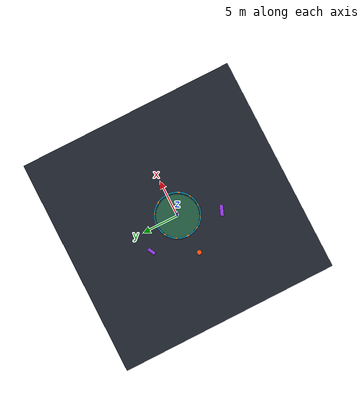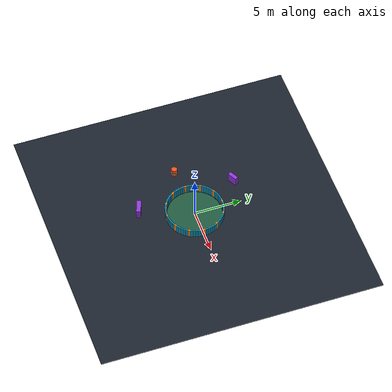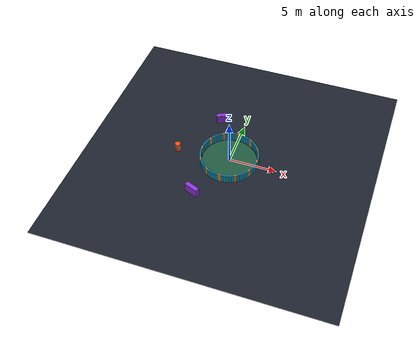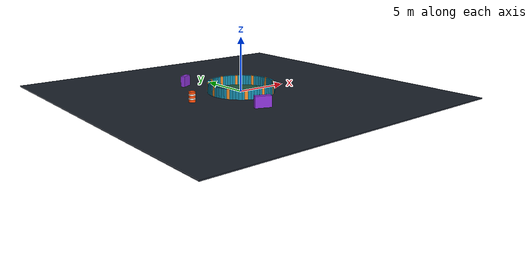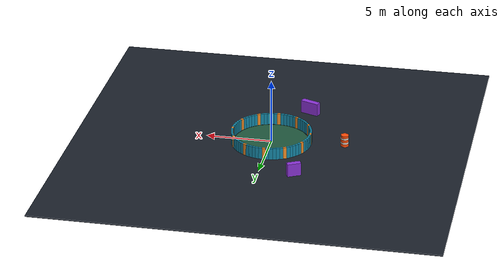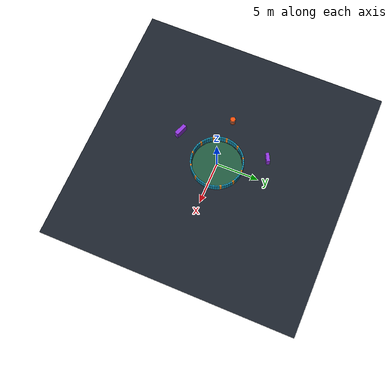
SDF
<sdf version="1.9">
 <world name="loop_course">
  <model name="ground">
   <static>true</static>
   <link name="ground">
    <collision name="ground_collision">
     <pose>0 0 -0.05 0 0 0</pose>
     <geometry><box><size>30 30 0.1</size></box></geometry>
    </collision>
    <visual name="ground_visual">
     <pose>0 0 -0.05 0 0 0</pose>
     <geometry><box><size>30 30 0.1</size></box></geometry>
     <material><ambient>0.105 0.13 0.17 1</ambient><diffuse>0.105 0.13 0.17 1</diffuse></material>
    </visual>
   </link>
  </model>
  <model name="island">
   <static>true</static>
   <link name="island">
    <visual name="grass">
     <pose>0 0 0.005 0 0 0</pose>
     <geometry><cylinder><radius>2.88</radius><length>0.02</length></cylinder></geometry>
     <material><ambient>0.12 0.34 0.24 1</ambient><diffuse>0.12 0.34 0.24 1</diffuse></material>
    </visual>
   </link>
  </model>
  <model name="inner_wall">
   <static>true</static>
   <link name="wall">
    <collision name="wall_0">
     <pose>3.0 0.0 0.45 0 0 1.5707963267948966</pose>
     <geometry><box><size>0.2869656574510724 0.16 0.9</size></box></geometry>
    </collision>
    <visual name="wall_visual_0">
     <pose>3.0 0.0 0.45 0 0 1.5707963267948966</pose>
     <geometry><box><size>0.2869656574510724 0.16 0.9</size></box></geometry>
     <material><ambient>0.98 0.57 0.16 1</ambient><diffuse>0.98 0.57 0.16 1</diffuse></material>
    </visual>
    <collision name="wall_1">
     <pose>2.988584094275237 0.2614672282429745 0.45 0 0 1.658062789394613</pose>
     <geometry><box><size>0.2869656574510724 0.16 0.9</size></box></geometry>
    </collision>
    <visual name="wall_visual_1">
     <pose>2.988584094275237 0.2614672282429745 0.45 0 0 1.658062789394613</pose>
     <geometry><box><size>0.2869656574510724 0.16 0.9</size></box></geometry>
     <material><ambient>0.08 0.55 0.68 1</ambient><diffuse>0.08 0.55 0.68 1</diffuse></material>
    </visual>
    <collision name="wall_2">
     <pose>2.954423259036624 0.520944533000791 0.45 0 0 1.7453292519943295</pose>
     <geometry><box><size>0.2869656574510724 0.16 0.9</size></box></geometry>
    </collision>
    <visual name="wall_visual_2">
     <pose>2.954423259036624 0.520944533000791 0.45 0 0 1.7453292519943295</pose>
     <geometry><box><size>0.2869656574510724 0.16 0.9</size></box></geometry>
     <material><ambient>0.08 0.55 0.68 1</ambient><diffuse>0.08 0.55 0.68 1</diffuse></material>
    </visual>
    <collision name="wall_3">
     <pose>2.897777478867205 0.7764571353075622 0.45 0 0 1.832595714594046</pose>
     <geometry><box><size>0.2869656574510724 0.16 0.9</size></box></geometry>
    </collision>
    <visual name="wall_visual_3">
     <pose>2.897777478867205 0.7764571353075622 0.45 0 0 1.832595714594046</pose>
     <geometry><box><size>0.2869656574510724 0.16 0.9</size></box></geometry>
     <material><ambient>0.08 0.55 0.68 1</ambient><diffuse>0.08 0.55 0.68 1</diffuse></material>
    </visual>
    <collision name="wall_4">
     <pose>2.8190778623577253 1.0260604299770062 0.45 0 0 1.9198621771937625</pose>
     <geometry><box><size>0.2869656574510724 0.16 0.9</size></box></geometry>
    </collision>
    <visual name="wall_visual_4">
     <pose>2.8190778623577253 1.0260604299770062 0.45 0 0 1.9198621771937625</pose>
     <geometry><box><size>0.2869656574510724 0.16 0.9</size></box></geometry>
     <material><ambient>0.08 0.55 0.68 1</ambient><diffuse>0.08 0.55 0.68 1</diffuse></material>
    </visual>
    <collision name="wall_5">
     <pose>2.7189233611099497 1.2678547852220983 0.45 0 0 2.007128639793479</pose>
     <geometry><box><size>0.2869656574510724 0.16 0.9</size></box></geometry>
    </collision>
    <visual name="wall_visual_5">
     <pose>2.7189233611099497 1.2678547852220983 0.45 0 0 2.007128639793479</pose>
     <geometry><box><size>0.2869656574510724 0.16 0.9</size></box></geometry>
     <material><ambient>0.08 0.55 0.68 1</ambient><diffuse>0.08 0.55 0.68 1</diffuse></material>
    </visual>
    <collision name="wall_6">
     <pose>2.598076211353316 1.4999999999999998 0.45 0 0 2.0943951023931953</pose>
     <geometry><box><size>0.2869656574510724 0.16 0.9</size></box></geometry>
    </collision>
    <visual name="wall_visual_6">
     <pose>2.598076211353316 1.4999999999999998 0.45 0 0 2.0943951023931953</pose>
     <geometry><box><size>0.2869656574510724 0.16 0.9</size></box></geometry>
     <material><ambient>0.98 0.57 0.16 1</ambient><diffuse>0.98 0.57 0.16 1</diffuse></material>
    </visual>
    <collision name="wall_7">
     <pose>2.4574561328669753 1.7207293090531381 0.45 0 0 2.181661564992912</pose>
     <geometry><box><size>0.2869656574510724 0.16 0.9</size></box></geometry>
    </collision>
    <visual name="wall_visual_7">
     <pose>2.4574561328669753 1.7207293090531381 0.45 0 0 2.181661564992912</pose>
     <geometry><box><size>0.2869656574510724 0.16 0.9</size></box></geometry>
     <material><ambient>0.08 0.55 0.68 1</ambient><diffuse>0.08 0.55 0.68 1</diffuse></material>
    </visual>
    <collision name="wall_8">
     <pose>2.298133329356934 1.9283628290596178 0.45 0 0 2.2689280275926285</pose>
     <geometry><box><size>0.2869656574510724 0.16 0.9</size></box></geometry>
    </collision>
    <visual name="wall_visual_8">
     <pose>2.298133329356934 1.9283628290596178 0.45 0 0 2.2689280275926285</pose>
     <geometry><box><size>0.2869656574510724 0.16 0.9</size></box></geometry>
     <material><ambient>0.08 0.55 0.68 1</ambient><diffuse>0.08 0.55 0.68 1</diffuse></material>
    </visual>
    <collision name="wall_9">
     <pose>2.121320343559643 2.1213203435596424 0.45 0 0 2.356194490192345</pose>
     <geometry><box><size>0.2869656574510724 0.16 0.9</size></box></geometry>
    </collision>
    <visual name="wall_visual_9">
     <pose>2.121320343559643 2.1213203435596424 0.45 0 0 2.356194490192345</pose>
     <geometry><box><size>0.2869656574510724 0.16 0.9</size></box></geometry>
     <material><ambient>0.08 0.55 0.68 1</ambient><diffuse>0.08 0.55 0.68 1</diffuse></material>
    </visual>
    <collision name="wall_10">
     <pose>1.9283628290596182 2.298133329356934 0.45 0 0 2.443460952792061</pose>
     <geometry><box><size>0.2869656574510724 0.16 0.9</size></box></geometry>
    </collision>
    <visual name="wall_visual_10">
     <pose>1.9283628290596182 2.298133329356934 0.45 0 0 2.443460952792061</pose>
     <geometry><box><size>0.2869656574510724 0.16 0.9</size></box></geometry>
     <material><ambient>0.08 0.55 0.68 1</ambient><diffuse>0.08 0.55 0.68 1</diffuse></material>
    </visual>
    <collision name="wall_11">
     <pose>1.7207293090531386 2.457456132866975 0.45 0 0 2.5307274153917776</pose>
     <geometry><box><size>0.2869656574510724 0.16 0.9</size></box></geometry>
    </collision>
    <visual name="wall_visual_11">
     <pose>1.7207293090531386 2.457456132866975 0.45 0 0 2.5307274153917776</pose>
     <geometry><box><size>0.2869656574510724 0.16 0.9</size></box></geometry>
     <material><ambient>0.08 0.55 0.68 1</ambient><diffuse>0.08 0.55 0.68 1</diffuse></material>
    </visual>
    <collision name="wall_12">
     <pose>1.5000000000000004 2.598076211353316 0.45 0 0 2.617993877991494</pose>
     <geometry><box><size>0.2869656574510724 0.16 0.9</size></box></geometry>
    </collision>
    <visual name="wall_visual_12">
     <pose>1.5000000000000004 2.598076211353316 0.45 0 0 2.617993877991494</pose>
     <geometry><box><size>0.2869656574510724 0.16 0.9</size></box></geometry>
     <material><ambient>0.98 0.57 0.16 1</ambient><diffuse>0.98 0.57 0.16 1</diffuse></material>
    </visual>
    <collision name="wall_13">
     <pose>1.2678547852220983 2.7189233611099497 0.45 0 0 2.705260340591211</pose>
     <geometry><box><size>0.2869656574510724 0.16 0.9</size></box></geometry>
    </collision>
    <visual name="wall_visual_13">
     <pose>1.2678547852220983 2.7189233611099497 0.45 0 0 2.705260340591211</pose>
     <geometry><box><size>0.2869656574510724 0.16 0.9</size></box></geometry>
     <material><ambient>0.08 0.55 0.68 1</ambient><diffuse>0.08 0.55 0.68 1</diffuse></material>
    </visual>
    <collision name="wall_14">
     <pose>1.0260604299770064 2.819077862357725 0.45 0 0 2.792526803190927</pose>
     <geometry><box><size>0.2869656574510724 0.16 0.9</size></box></geometry>
    </collision>
    <visual name="wall_visual_14">
     <pose>1.0260604299770064 2.819077862357725 0.45 0 0 2.792526803190927</pose>
     <geometry><box><size>0.2869656574510724 0.16 0.9</size></box></geometry>
     <material><ambient>0.08 0.55 0.68 1</ambient><diffuse>0.08 0.55 0.68 1</diffuse></material>
    </visual>
    <collision name="wall_15">
     <pose>0.7764571353075629 2.8977774788672046 0.45 0 0 2.8797932657906435</pose>
     <geometry><box><size>0.2869656574510724 0.16 0.9</size></box></geometry>
    </collision>
    <visual name="wall_visual_15">
     <pose>0.7764571353075629 2.8977774788672046 0.45 0 0 2.8797932657906435</pose>
     <geometry><box><size>0.2869656574510724 0.16 0.9</size></box></geometry>
     <material><ambient>0.08 0.55 0.68 1</ambient><diffuse>0.08 0.55 0.68 1</diffuse></material>
    </visual>
    <collision name="wall_16">
     <pose>0.5209445330007912 2.954423259036624 0.45 0 0 2.9670597283903604</pose>
     <geometry><box><size>0.2869656574510724 0.16 0.9</size></box></geometry>
    </collision>
    <visual name="wall_visual_16">
     <pose>0.5209445330007912 2.954423259036624 0.45 0 0 2.9670597283903604</pose>
     <geometry><box><size>0.2869656574510724 0.16 0.9</size></box></geometry>
     <material><ambient>0.08 0.55 0.68 1</ambient><diffuse>0.08 0.55 0.68 1</diffuse></material>
    </visual>
    <collision name="wall_17">
     <pose>0.2614672282429744 2.988584094275237 0.45 0 0 3.0543261909900767</pose>
     <geometry><box><size>0.2869656574510724 0.16 0.9</size></box></geometry>
    </collision>
    <visual name="wall_visual_17">
     <pose>0.2614672282429744 2.988584094275237 0.45 0 0 3.0543261909900767</pose>
     <geometry><box><size>0.2869656574510724 0.16 0.9</size></box></geometry>
     <material><ambient>0.08 0.55 0.68 1</ambient><diffuse>0.08 0.55 0.68 1</diffuse></material>
    </visual>
    <collision name="wall_18">
     <pose>1.8369701987210297e-16 3.0 0.45 0 0 3.141592653589793</pose>
     <geometry><box><size>0.2869656574510724 0.16 0.9</size></box></geometry>
    </collision>
    <visual name="wall_visual_18">
     <pose>1.8369701987210297e-16 3.0 0.45 0 0 3.141592653589793</pose>
     <geometry><box><size>0.2869656574510724 0.16 0.9</size></box></geometry>
     <material><ambient>0.98 0.57 0.16 1</ambient><diffuse>0.98 0.57 0.16 1</diffuse></material>
    </visual>
    <collision name="wall_19">
     <pose>-0.261467228242974 2.988584094275237 0.45 0 0 3.2288591161895095</pose>
     <geometry><box><size>0.2869656574510724 0.16 0.9</size></box></geometry>
    </collision>
    <visual name="wall_visual_19">
     <pose>-0.261467228242974 2.988584094275237 0.45 0 0 3.2288591161895095</pose>
     <geometry><box><size>0.2869656574510724 0.16 0.9</size></box></geometry>
     <material><ambient>0.08 0.55 0.68 1</ambient><diffuse>0.08 0.55 0.68 1</diffuse></material>
    </visual>
    <collision name="wall_20">
     <pose>-0.5209445330007909 2.954423259036624 0.45 0 0 3.316125578789226</pose>
     <geometry><box><size>0.2869656574510724 0.16 0.9</size></box></geometry>
    </collision>
    <visual name="wall_visual_20">
     <pose>-0.5209445330007909 2.954423259036624 0.45 0 0 3.316125578789226</pose>
     <geometry><box><size>0.2869656574510724 0.16 0.9</size></box></geometry>
     <material><ambient>0.08 0.55 0.68 1</ambient><diffuse>0.08 0.55 0.68 1</diffuse></material>
    </visual>
    <collision name="wall_21">
     <pose>-0.7764571353075626 2.897777478867205 0.45 0 0 3.4033920413889427</pose>
     <geometry><box><size>0.2869656574510724 0.16 0.9</size></box></geometry>
    </collision>
    <visual name="wall_visual_21">
     <pose>-0.7764571353075626 2.897777478867205 0.45 0 0 3.4033920413889427</pose>
     <geometry><box><size>0.2869656574510724 0.16 0.9</size></box></geometry>
     <material><ambient>0.08 0.55 0.68 1</ambient><diffuse>0.08 0.55 0.68 1</diffuse></material>
    </visual>
    <collision name="wall_22">
     <pose>-1.0260604299770055 2.8190778623577253 0.45 0 0 3.4906585039886586</pose>
     <geometry><box><size>0.2869656574510724 0.16 0.9</size></box></geometry>
    </collision>
    <visual name="wall_visual_22">
     <pose>-1.0260604299770055 2.8190778623577253 0.45 0 0 3.4906585039886586</pose>
     <geometry><box><size>0.2869656574510724 0.16 0.9</size></box></geometry>
     <material><ambient>0.08 0.55 0.68 1</ambient><diffuse>0.08 0.55 0.68 1</diffuse></material>
    </visual>
    <collision name="wall_23">
     <pose>-1.267854785222098 2.71892336110995 0.45 0 0 3.5779249665883754</pose>
     <geometry><box><size>0.2869656574510724 0.16 0.9</size></box></geometry>
    </collision>
    <visual name="wall_visual_23">
     <pose>-1.267854785222098 2.71892336110995 0.45 0 0 3.5779249665883754</pose>
     <geometry><box><size>0.2869656574510724 0.16 0.9</size></box></geometry>
     <material><ambient>0.08 0.55 0.68 1</ambient><diffuse>0.08 0.55 0.68 1</diffuse></material>
    </visual>
    <collision name="wall_24">
     <pose>-1.4999999999999993 2.598076211353316 0.45 0 0 3.665191429188092</pose>
     <geometry><box><size>0.2869656574510724 0.16 0.9</size></box></geometry>
    </collision>
    <visual name="wall_visual_24">
     <pose>-1.4999999999999993 2.598076211353316 0.45 0 0 3.665191429188092</pose>
     <geometry><box><size>0.2869656574510724 0.16 0.9</size></box></geometry>
     <material><ambient>0.98 0.57 0.16 1</ambient><diffuse>0.98 0.57 0.16 1</diffuse></material>
    </visual>
    <collision name="wall_25">
     <pose>-1.7207293090531386 2.457456132866975 0.45 0 0 3.7524578917878086</pose>
     <geometry><box><size>0.2869656574510724 0.16 0.9</size></box></geometry>
    </collision>
    <visual name="wall_visual_25">
     <pose>-1.7207293090531386 2.457456132866975 0.45 0 0 3.7524578917878086</pose>
     <geometry><box><size>0.2869656574510724 0.16 0.9</size></box></geometry>
     <material><ambient>0.08 0.55 0.68 1</ambient><diffuse>0.08 0.55 0.68 1</diffuse></material>
    </visual>
    <collision name="wall_26">
     <pose>-1.9283628290596182 2.298133329356934 0.45 0 0 3.839724354387525</pose>
     <geometry><box><size>0.2869656574510724 0.16 0.9</size></box></geometry>
    </collision>
    <visual name="wall_visual_26">
     <pose>-1.9283628290596182 2.298133329356934 0.45 0 0 3.839724354387525</pose>
     <geometry><box><size>0.2869656574510724 0.16 0.9</size></box></geometry>
     <material><ambient>0.08 0.55 0.68 1</ambient><diffuse>0.08 0.55 0.68 1</diffuse></material>
    </visual>
    <collision name="wall_27">
     <pose>-2.1213203435596424 2.121320343559643 0.45 0 0 3.9269908169872414</pose>
     <geometry><box><size>0.2869656574510724 0.16 0.9</size></box></geometry>
    </collision>
    <visual name="wall_visual_27">
     <pose>-2.1213203435596424 2.121320343559643 0.45 0 0 3.9269908169872414</pose>
     <geometry><box><size>0.2869656574510724 0.16 0.9</size></box></geometry>
     <material><ambient>0.08 0.55 0.68 1</ambient><diffuse>0.08 0.55 0.68 1</diffuse></material>
    </visual>
    <collision name="wall_28">
     <pose>-2.2981333293569337 1.9283628290596184 0.45 0 0 4.014257279586958</pose>
     <geometry><box><size>0.2869656574510724 0.16 0.9</size></box></geometry>
    </collision>
    <visual name="wall_visual_28">
     <pose>-2.2981333293569337 1.9283628290596184 0.45 0 0 4.014257279586958</pose>
     <geometry><box><size>0.2869656574510724 0.16 0.9</size></box></geometry>
     <material><ambient>0.08 0.55 0.68 1</ambient><diffuse>0.08 0.55 0.68 1</diffuse></material>
    </visual>
    <collision name="wall_29">
     <pose>-2.4574561328669757 1.7207293090531377 0.45 0 0 4.101523742186675</pose>
     <geometry><box><size>0.2869656574510724 0.16 0.9</size></box></geometry>
    </collision>
    <visual name="wall_visual_29">
     <pose>-2.4574561328669757 1.7207293090531377 0.45 0 0 4.101523742186675</pose>
     <geometry><box><size>0.2869656574510724 0.16 0.9</size></box></geometry>
     <material><ambient>0.08 0.55 0.68 1</ambient><diffuse>0.08 0.55 0.68 1</diffuse></material>
    </visual>
    <collision name="wall_30">
     <pose>-2.5980762113533156 1.5000000000000009 0.45 0 0 4.1887902047863905</pose>
     <geometry><box><size>0.2869656574510724 0.16 0.9</size></box></geometry>
    </collision>
    <visual name="wall_visual_30">
     <pose>-2.5980762113533156 1.5000000000000009 0.45 0 0 4.1887902047863905</pose>
     <geometry><box><size>0.2869656574510724 0.16 0.9</size></box></geometry>
     <material><ambient>0.98 0.57 0.16 1</ambient><diffuse>0.98 0.57 0.16 1</diffuse></material>
    </visual>
    <collision name="wall_31">
     <pose>-2.7189233611099497 1.2678547852220985 0.45 0 0 4.276056667386108</pose>
     <geometry><box><size>0.2869656574510724 0.16 0.9</size></box></geometry>
    </collision>
    <visual name="wall_visual_31">
     <pose>-2.7189233611099497 1.2678547852220985 0.45 0 0 4.276056667386108</pose>
     <geometry><box><size>0.2869656574510724 0.16 0.9</size></box></geometry>
     <material><ambient>0.08 0.55 0.68 1</ambient><diffuse>0.08 0.55 0.68 1</diffuse></material>
    </visual>
    <collision name="wall_32">
     <pose>-2.819077862357725 1.0260604299770066 0.45 0 0 4.363323129985824</pose>
     <geometry><box><size>0.2869656574510724 0.16 0.9</size></box></geometry>
    </collision>
    <visual name="wall_visual_32">
     <pose>-2.819077862357725 1.0260604299770066 0.45 0 0 4.363323129985824</pose>
     <geometry><box><size>0.2869656574510724 0.16 0.9</size></box></geometry>
     <material><ambient>0.08 0.55 0.68 1</ambient><diffuse>0.08 0.55 0.68 1</diffuse></material>
    </visual>
    <collision name="wall_33">
     <pose>-2.897777478867205 0.7764571353075618 0.45 0 0 4.4505895925855405</pose>
     <geometry><box><size>0.2869656574510724 0.16 0.9</size></box></geometry>
    </collision>
    <visual name="wall_visual_33">
     <pose>-2.897777478867205 0.7764571353075618 0.45 0 0 4.4505895925855405</pose>
     <geometry><box><size>0.2869656574510724 0.16 0.9</size></box></geometry>
     <material><ambient>0.08 0.55 0.68 1</ambient><diffuse>0.08 0.55 0.68 1</diffuse></material>
    </visual>
    <collision name="wall_34">
     <pose>-2.954423259036624 0.5209445330007908 0.45 0 0 4.537856055185257</pose>
     <geometry><box><size>0.2869656574510724 0.16 0.9</size></box></geometry>
    </collision>
    <visual name="wall_visual_34">
     <pose>-2.954423259036624 0.5209445330007908 0.45 0 0 4.537856055185257</pose>
     <geometry><box><size>0.2869656574510724 0.16 0.9</size></box></geometry>
     <material><ambient>0.08 0.55 0.68 1</ambient><diffuse>0.08 0.55 0.68 1</diffuse></material>
    </visual>
    <collision name="wall_35">
     <pose>-2.988584094275237 0.2614672282429746 0.45 0 0 4.625122517784973</pose>
     <geometry><box><size>0.2869656574510724 0.16 0.9</size></box></geometry>
    </collision>
    <visual name="wall_visual_35">
     <pose>-2.988584094275237 0.2614672282429746 0.45 0 0 4.625122517784973</pose>
     <geometry><box><size>0.2869656574510724 0.16 0.9</size></box></geometry>
     <material><ambient>0.08 0.55 0.68 1</ambient><diffuse>0.08 0.55 0.68 1</diffuse></material>
    </visual>
    <collision name="wall_36">
     <pose>-3.0 3.6739403974420594e-16 0.45 0 0 4.71238898038469</pose>
     <geometry><box><size>0.2869656574510724 0.16 0.9</size></box></geometry>
    </collision>
    <visual name="wall_visual_36">
     <pose>-3.0 3.6739403974420594e-16 0.45 0 0 4.71238898038469</pose>
     <geometry><box><size>0.2869656574510724 0.16 0.9</size></box></geometry>
     <material><ambient>0.98 0.57 0.16 1</ambient><diffuse>0.98 0.57 0.16 1</diffuse></material>
    </visual>
    <collision name="wall_37">
     <pose>-2.988584094275237 -0.26146722824297386 0.45 0 0 4.799655442984406</pose>
     <geometry><box><size>0.2869656574510724 0.16 0.9</size></box></geometry>
    </collision>
    <visual name="wall_visual_37">
     <pose>-2.988584094275237 -0.26146722824297386 0.45 0 0 4.799655442984406</pose>
     <geometry><box><size>0.2869656574510724 0.16 0.9</size></box></geometry>
     <material><ambient>0.08 0.55 0.68 1</ambient><diffuse>0.08 0.55 0.68 1</diffuse></material>
    </visual>
    <collision name="wall_38">
     <pose>-2.9544232590366244 -0.52094453300079 0.45 0 0 4.886921905584122</pose>
     <geometry><box><size>0.2869656574510724 0.16 0.9</size></box></geometry>
    </collision>
    <visual name="wall_visual_38">
     <pose>-2.9544232590366244 -0.52094453300079 0.45 0 0 4.886921905584122</pose>
     <geometry><box><size>0.2869656574510724 0.16 0.9</size></box></geometry>
     <material><ambient>0.08 0.55 0.68 1</ambient><diffuse>0.08 0.55 0.68 1</diffuse></material>
    </visual>
    <collision name="wall_39">
     <pose>-2.897777478867205 -0.7764571353075611 0.45 0 0 4.974188368183839</pose>
     <geometry><box><size>0.2869656574510724 0.16 0.9</size></box></geometry>
    </collision>
    <visual name="wall_visual_39">
     <pose>-2.897777478867205 -0.7764571353075611 0.45 0 0 4.974188368183839</pose>
     <geometry><box><size>0.2869656574510724 0.16 0.9</size></box></geometry>
     <material><ambient>0.08 0.55 0.68 1</ambient><diffuse>0.08 0.55 0.68 1</diffuse></material>
    </visual>
    <collision name="wall_40">
     <pose>-2.8190778623577253 -1.026060429977006 0.45 0 0 5.061454830783555</pose>
     <geometry><box><size>0.2869656574510724 0.16 0.9</size></box></geometry>
    </collision>
    <visual name="wall_visual_40">
     <pose>-2.8190778623577253 -1.026060429977006 0.45 0 0 5.061454830783555</pose>
     <geometry><box><size>0.2869656574510724 0.16 0.9</size></box></geometry>
     <material><ambient>0.08 0.55 0.68 1</ambient><diffuse>0.08 0.55 0.68 1</diffuse></material>
    </visual>
    <collision name="wall_41">
     <pose>-2.718923361109951 -1.2678547852220967 0.45 0 0 5.148721293383272</pose>
     <geometry><box><size>0.2869656574510724 0.16 0.9</size></box></geometry>
    </collision>
    <visual name="wall_visual_41">
     <pose>-2.718923361109951 -1.2678547852220967 0.45 0 0 5.148721293383272</pose>
     <geometry><box><size>0.2869656574510724 0.16 0.9</size></box></geometry>
     <material><ambient>0.08 0.55 0.68 1</ambient><diffuse>0.08 0.55 0.68 1</diffuse></material>
    </visual>
    <collision name="wall_42">
     <pose>-2.598076211353316 -1.5000000000000004 0.45 0 0 5.235987755982989</pose>
     <geometry><box><size>0.2869656574510724 0.16 0.9</size></box></geometry>
    </collision>
    <visual name="wall_visual_42">
     <pose>-2.598076211353316 -1.5000000000000004 0.45 0 0 5.235987755982989</pose>
     <geometry><box><size>0.2869656574510724 0.16 0.9</size></box></geometry>
     <material><ambient>0.98 0.57 0.16 1</ambient><diffuse>0.98 0.57 0.16 1</diffuse></material>
    </visual>
    <collision name="wall_43">
     <pose>-2.457456132866976 -1.7207293090531375 0.45 0 0 5.323254218582704</pose>
     <geometry><box><size>0.2869656574510724 0.16 0.9</size></box></geometry>
    </collision>
    <visual name="wall_visual_43">
     <pose>-2.457456132866976 -1.7207293090531375 0.45 0 0 5.323254218582704</pose>
     <geometry><box><size>0.2869656574510724 0.16 0.9</size></box></geometry>
     <material><ambient>0.08 0.55 0.68 1</ambient><diffuse>0.08 0.55 0.68 1</diffuse></material>
    </visual>
    <collision name="wall_44">
     <pose>-2.298133329356935 -1.9283628290596169 0.45 0 0 5.410520681182421</pose>
     <geometry><box><size>0.2869656574510724 0.16 0.9</size></box></geometry>
    </collision>
    <visual name="wall_visual_44">
     <pose>-2.298133329356935 -1.9283628290596169 0.45 0 0 5.410520681182421</pose>
     <geometry><box><size>0.2869656574510724 0.16 0.9</size></box></geometry>
     <material><ambient>0.08 0.55 0.68 1</ambient><diffuse>0.08 0.55 0.68 1</diffuse></material>
    </visual>
    <collision name="wall_45">
     <pose>-2.121320343559643 -2.1213203435596424 0.45 0 0 5.497787143782138</pose>
     <geometry><box><size>0.2869656574510724 0.16 0.9</size></box></geometry>
    </collision>
    <visual name="wall_visual_45">
     <pose>-2.121320343559643 -2.1213203435596424 0.45 0 0 5.497787143782138</pose>
     <geometry><box><size>0.2869656574510724 0.16 0.9</size></box></geometry>
     <material><ambient>0.08 0.55 0.68 1</ambient><diffuse>0.08 0.55 0.68 1</diffuse></material>
    </visual>
    <collision name="wall_46">
     <pose>-1.9283628290596184 -2.2981333293569337 0.45 0 0 5.585053606381854</pose>
     <geometry><box><size>0.2869656574510724 0.16 0.9</size></box></geometry>
    </collision>
    <visual name="wall_visual_46">
     <pose>-1.9283628290596184 -2.2981333293569337 0.45 0 0 5.585053606381854</pose>
     <geometry><box><size>0.2869656574510724 0.16 0.9</size></box></geometry>
     <material><ambient>0.08 0.55 0.68 1</ambient><diffuse>0.08 0.55 0.68 1</diffuse></material>
    </visual>
    <collision name="wall_47">
     <pose>-1.7207293090531373 -2.4574561328669766 0.45 0 0 5.672320068981572</pose>
     <geometry><box><size>0.2869656574510724 0.16 0.9</size></box></geometry>
    </collision>
    <visual name="wall_visual_47">
     <pose>-1.7207293090531373 -2.4574561328669766 0.45 0 0 5.672320068981572</pose>
     <geometry><box><size>0.2869656574510724 0.16 0.9</size></box></geometry>
     <material><ambient>0.08 0.55 0.68 1</ambient><diffuse>0.08 0.55 0.68 1</diffuse></material>
    </visual>
    <collision name="wall_48">
     <pose>-1.5000000000000013 -2.598076211353315 0.45 0 0 5.759586531581287</pose>
     <geometry><box><size>0.2869656574510724 0.16 0.9</size></box></geometry>
    </collision>
    <visual name="wall_visual_48">
     <pose>-1.5000000000000013 -2.598076211353315 0.45 0 0 5.759586531581287</pose>
     <geometry><box><size>0.2869656574510724 0.16 0.9</size></box></geometry>
     <material><ambient>0.98 0.57 0.16 1</ambient><diffuse>0.98 0.57 0.16 1</diffuse></material>
    </visual>
    <collision name="wall_49">
     <pose>-1.2678547852220998 -2.7189233611099493 0.45 0 0 5.8468529941810035</pose>
     <geometry><box><size>0.2869656574510724 0.16 0.9</size></box></geometry>
    </collision>
    <visual name="wall_visual_49">
     <pose>-1.2678547852220998 -2.7189233611099493 0.45 0 0 5.8468529941810035</pose>
     <geometry><box><size>0.2869656574510724 0.16 0.9</size></box></geometry>
     <material><ambient>0.08 0.55 0.68 1</ambient><diffuse>0.08 0.55 0.68 1</diffuse></material>
    </visual>
    <collision name="wall_50">
     <pose>-1.0260604299770058 -2.8190778623577253 0.45 0 0 5.934119456780721</pose>
     <geometry><box><size>0.2869656574510724 0.16 0.9</size></box></geometry>
    </collision>
    <visual name="wall_visual_50">
     <pose>-1.0260604299770058 -2.8190778623577253 0.45 0 0 5.934119456780721</pose>
     <geometry><box><size>0.2869656574510724 0.16 0.9</size></box></geometry>
     <material><ambient>0.08 0.55 0.68 1</ambient><diffuse>0.08 0.55 0.68 1</diffuse></material>
    </visual>
    <collision name="wall_51">
     <pose>-0.7764571353075619 -2.897777478867205 0.45 0 0 6.021385919380437</pose>
     <geometry><box><size>0.2869656574510724 0.16 0.9</size></box></geometry>
    </collision>
    <visual name="wall_visual_51">
     <pose>-0.7764571353075619 -2.897777478867205 0.45 0 0 6.021385919380437</pose>
     <geometry><box><size>0.2869656574510724 0.16 0.9</size></box></geometry>
     <material><ambient>0.08 0.55 0.68 1</ambient><diffuse>0.08 0.55 0.68 1</diffuse></material>
    </visual>
    <collision name="wall_52">
     <pose>-0.520944533000791 -2.954423259036624 0.45 0 0 6.1086523819801535</pose>
     <geometry><box><size>0.2869656574510724 0.16 0.9</size></box></geometry>
    </collision>
    <visual name="wall_visual_52">
     <pose>-0.520944533000791 -2.954423259036624 0.45 0 0 6.1086523819801535</pose>
     <geometry><box><size>0.2869656574510724 0.16 0.9</size></box></geometry>
     <material><ambient>0.08 0.55 0.68 1</ambient><diffuse>0.08 0.55 0.68 1</diffuse></material>
    </visual>
    <collision name="wall_53">
     <pose>-0.26146722824297475 -2.988584094275237 0.45 0 0 6.19591884457987</pose>
     <geometry><box><size>0.2869656574510724 0.16 0.9</size></box></geometry>
    </collision>
    <visual name="wall_visual_53">
     <pose>-0.26146722824297475 -2.988584094275237 0.45 0 0 6.19591884457987</pose>
     <geometry><box><size>0.2869656574510724 0.16 0.9</size></box></geometry>
     <material><ambient>0.08 0.55 0.68 1</ambient><diffuse>0.08 0.55 0.68 1</diffuse></material>
    </visual>
    <collision name="wall_54">
     <pose>-5.51091059616309e-16 -3.0 0.45 0 0 6.283185307179586</pose>
     <geometry><box><size>0.2869656574510724 0.16 0.9</size></box></geometry>
    </collision>
    <visual name="wall_visual_54">
     <pose>-5.51091059616309e-16 -3.0 0.45 0 0 6.283185307179586</pose>
     <geometry><box><size>0.2869656574510724 0.16 0.9</size></box></geometry>
     <material><ambient>0.98 0.57 0.16 1</ambient><diffuse>0.98 0.57 0.16 1</diffuse></material>
    </visual>
    <collision name="wall_55">
     <pose>0.26146722824297364 -2.988584094275237 0.45 0 0 6.370451769779303</pose>
     <geometry><box><size>0.2869656574510724 0.16 0.9</size></box></geometry>
    </collision>
    <visual name="wall_visual_55">
     <pose>0.26146722824297364 -2.988584094275237 0.45 0 0 6.370451769779303</pose>
     <geometry><box><size>0.2869656574510724 0.16 0.9</size></box></geometry>
     <material><ambient>0.08 0.55 0.68 1</ambient><diffuse>0.08 0.55 0.68 1</diffuse></material>
    </visual>
    <collision name="wall_56">
     <pose>0.5209445330007899 -2.9544232590366244 0.45 0 0 6.457718232379019</pose>
     <geometry><box><size>0.2869656574510724 0.16 0.9</size></box></geometry>
    </collision>
    <visual name="wall_visual_56">
     <pose>0.5209445330007899 -2.9544232590366244 0.45 0 0 6.457718232379019</pose>
     <geometry><box><size>0.2869656574510724 0.16 0.9</size></box></geometry>
     <material><ambient>0.08 0.55 0.68 1</ambient><diffuse>0.08 0.55 0.68 1</diffuse></material>
    </visual>
    <collision name="wall_57">
     <pose>0.7764571353075609 -2.897777478867205 0.45 0 0 6.544984694978735</pose>
     <geometry><box><size>0.2869656574510724 0.16 0.9</size></box></geometry>
    </collision>
    <visual name="wall_visual_57">
     <pose>0.7764571353075609 -2.897777478867205 0.45 0 0 6.544984694978735</pose>
     <geometry><box><size>0.2869656574510724 0.16 0.9</size></box></geometry>
     <material><ambient>0.08 0.55 0.68 1</ambient><diffuse>0.08 0.55 0.68 1</diffuse></material>
    </visual>
    <collision name="wall_58">
     <pose>1.026060429977007 -2.819077862357725 0.45 0 0 6.632251157578453</pose>
     <geometry><box><size>0.2869656574510724 0.16 0.9</size></box></geometry>
    </collision>
    <visual name="wall_visual_58">
     <pose>1.026060429977007 -2.819077862357725 0.45 0 0 6.632251157578453</pose>
     <geometry><box><size>0.2869656574510724 0.16 0.9</size></box></geometry>
     <material><ambient>0.08 0.55 0.68 1</ambient><diffuse>0.08 0.55 0.68 1</diffuse></material>
    </visual>
    <collision name="wall_59">
     <pose>1.2678547852220965 -2.718923361109951 0.45 0 0 6.719517620178168</pose>
     <geometry><box><size>0.2869656574510724 0.16 0.9</size></box></geometry>
    </collision>
    <visual name="wall_visual_59">
     <pose>1.2678547852220965 -2.718923361109951 0.45 0 0 6.719517620178168</pose>
     <geometry><box><size>0.2869656574510724 0.16 0.9</size></box></geometry>
     <material><ambient>0.08 0.55 0.68 1</ambient><diffuse>0.08 0.55 0.68 1</diffuse></material>
    </visual>
    <collision name="wall_60">
     <pose>1.499999999999998 -2.598076211353317 0.45 0 0 6.8067840827778845</pose>
     <geometry><box><size>0.2869656574510724 0.16 0.9</size></box></geometry>
    </collision>
    <visual name="wall_visual_60">
     <pose>1.499999999999998 -2.598076211353317 0.45 0 0 6.8067840827778845</pose>
     <geometry><box><size>0.2869656574510724 0.16 0.9</size></box></geometry>
     <material><ambient>0.98 0.57 0.16 1</ambient><diffuse>0.98 0.57 0.16 1</diffuse></material>
    </visual>
    <collision name="wall_61">
     <pose>1.7207293090531381 -2.4574561328669753 0.45 0 0 6.894050545377602</pose>
     <geometry><box><size>0.2869656574510724 0.16 0.9</size></box></geometry>
    </collision>
    <visual name="wall_visual_61">
     <pose>1.7207293090531381 -2.4574561328669753 0.45 0 0 6.894050545377602</pose>
     <geometry><box><size>0.2869656574510724 0.16 0.9</size></box></geometry>
     <material><ambient>0.08 0.55 0.68 1</ambient><diffuse>0.08 0.55 0.68 1</diffuse></material>
    </visual>
    <collision name="wall_62">
     <pose>1.9283628290596178 -2.2981333293569346 0.45 0 0 6.981317007977318</pose>
     <geometry><box><size>0.2869656574510724 0.16 0.9</size></box></geometry>
    </collision>
    <visual name="wall_visual_62">
     <pose>1.9283628290596178 -2.2981333293569346 0.45 0 0 6.981317007977318</pose>
     <geometry><box><size>0.2869656574510724 0.16 0.9</size></box></geometry>
     <material><ambient>0.08 0.55 0.68 1</ambient><diffuse>0.08 0.55 0.68 1</diffuse></material>
    </visual>
    <collision name="wall_63">
     <pose>2.121320343559642 -2.121320343559643 0.45 0 0 7.0685834705770345</pose>
     <geometry><box><size>0.2869656574510724 0.16 0.9</size></box></geometry>
    </collision>
    <visual name="wall_visual_63">
     <pose>2.121320343559642 -2.121320343559643 0.45 0 0 7.0685834705770345</pose>
     <geometry><box><size>0.2869656574510724 0.16 0.9</size></box></geometry>
     <material><ambient>0.08 0.55 0.68 1</ambient><diffuse>0.08 0.55 0.68 1</diffuse></material>
    </visual>
    <collision name="wall_64">
     <pose>2.2981333293569333 -1.9283628290596186 0.45 0 0 7.155849933176751</pose>
     <geometry><box><size>0.2869656574510724 0.16 0.9</size></box></geometry>
    </collision>
    <visual name="wall_visual_64">
     <pose>2.2981333293569333 -1.9283628290596186 0.45 0 0 7.155849933176751</pose>
     <geometry><box><size>0.2869656574510724 0.16 0.9</size></box></geometry>
     <material><ambient>0.08 0.55 0.68 1</ambient><diffuse>0.08 0.55 0.68 1</diffuse></material>
    </visual>
    <collision name="wall_65">
     <pose>2.457456132866975 -1.7207293090531395 0.45 0 0 7.243116395776467</pose>
     <geometry><box><size>0.2869656574510724 0.16 0.9</size></box></geometry>
    </collision>
    <visual name="wall_visual_65">
     <pose>2.457456132866975 -1.7207293090531395 0.45 0 0 7.243116395776467</pose>
     <geometry><box><size>0.2869656574510724 0.16 0.9</size></box></geometry>
     <material><ambient>0.08 0.55 0.68 1</ambient><diffuse>0.08 0.55 0.68 1</diffuse></material>
    </visual>
    <collision name="wall_66">
     <pose>2.5980762113533165 -1.4999999999999991 0.45 0 0 7.3303828583761845</pose>
     <geometry><box><size>0.2869656574510724 0.16 0.9</size></box></geometry>
    </collision>
    <visual name="wall_visual_66">
     <pose>2.5980762113533165 -1.4999999999999991 0.45 0 0 7.3303828583761845</pose>
     <geometry><box><size>0.2869656574510724 0.16 0.9</size></box></geometry>
     <material><ambient>0.98 0.57 0.16 1</ambient><diffuse>0.98 0.57 0.16 1</diffuse></material>
    </visual>
    <collision name="wall_67">
     <pose>2.7189233611099493 -1.2678547852221 0.45 0 0 7.4176493209759</pose>
     <geometry><box><size>0.2869656574510724 0.16 0.9</size></box></geometry>
    </collision>
    <visual name="wall_visual_67">
     <pose>2.7189233611099493 -1.2678547852221 0.45 0 0 7.4176493209759</pose>
     <geometry><box><size>0.2869656574510724 0.16 0.9</size></box></geometry>
     <material><ambient>0.08 0.55 0.68 1</ambient><diffuse>0.08 0.55 0.68 1</diffuse></material>
    </visual>
    <collision name="wall_68">
     <pose>2.8190778623577253 -1.0260604299770058 0.45 0 0 7.504915783575617</pose>
     <geometry><box><size>0.2869656574510724 0.16 0.9</size></box></geometry>
    </collision>
    <visual name="wall_visual_68">
     <pose>2.8190778623577253 -1.0260604299770058 0.45 0 0 7.504915783575617</pose>
     <geometry><box><size>0.2869656574510724 0.16 0.9</size></box></geometry>
     <material><ambient>0.08 0.55 0.68 1</ambient><diffuse>0.08 0.55 0.68 1</diffuse></material>
    </visual>
    <collision name="wall_69">
     <pose>2.897777478867205 -0.776457135307562 0.45 0 0 7.592182246175334</pose>
     <geometry><box><size>0.2869656574510724 0.16 0.9</size></box></geometry>
    </collision>
    <visual name="wall_visual_69">
     <pose>2.897777478867205 -0.776457135307562 0.45 0 0 7.592182246175334</pose>
     <geometry><box><size>0.2869656574510724 0.16 0.9</size></box></geometry>
     <material><ambient>0.08 0.55 0.68 1</ambient><diffuse>0.08 0.55 0.68 1</diffuse></material>
    </visual>
    <collision name="wall_70">
     <pose>2.954423259036624 -0.5209445330007911 0.45 0 0 7.67944870877505</pose>
     <geometry><box><size>0.2869656574510724 0.16 0.9</size></box></geometry>
    </collision>
    <visual name="wall_visual_70">
     <pose>2.954423259036624 -0.5209445330007911 0.45 0 0 7.67944870877505</pose>
     <geometry><box><size>0.2869656574510724 0.16 0.9</size></box></geometry>
     <material><ambient>0.08 0.55 0.68 1</ambient><diffuse>0.08 0.55 0.68 1</diffuse></material>
    </visual>
    <collision name="wall_71">
     <pose>2.988584094275237 -0.26146722824297497 0.45 0 0 7.766715171374766</pose>
     <geometry><box><size>0.2869656574510724 0.16 0.9</size></box></geometry>
    </collision>
    <visual name="wall_visual_71">
     <pose>2.988584094275237 -0.26146722824297497 0.45 0 0 7.766715171374766</pose>
     <geometry><box><size>0.2869656574510724 0.16 0.9</size></box></geometry>
     <material><ambient>0.08 0.55 0.68 1</ambient><diffuse>0.08 0.55 0.68 1</diffuse></material>
    </visual>
   </link>
  </model>
  <model name="obstacle_localization_1">
   <static>true</static>
   <pose>-2.674221609984934 5.146701738073578 .5 0 0 -2.66238898038469</pose>
   <link name="landmark">
    <collision name="marker"><geometry><box><size>1.05 0.4 1</size></box></geometry></collision>
    <visual name="marker_visual">
     <geometry><box><size>1.05 0.4 1</size></box></geometry>
     <material><ambient>.55 .2 .85 1</ambient><diffuse>.55 .2 .85 1</diffuse></material>
    </visual>
   </link>
  </model>
  <model name="obstacle_localization_2">
   <static>true</static>
   <pose>-2.047289850652962 -5.399928635400044 .5 0 0 -0.3623889803846902</pose>
   <link name="landmark">
    <collision name="marker"><geometry><box><size>1.45 0.45 1</size></box></geometry></collision>
    <visual name="marker_visual">
     <geometry><box><size>1.45 0.45 1</size></box></geometry>
     <material><ambient>.55 .2 .85 1</ambient><diffuse>.55 .2 .85 1</diffuse></material>
    </visual>
   </link>
  </model>
  <model name="obstacle_pylon_outer">
   <static>true</static>
   <pose>-5.590450744450617 -0.3268952031944485 0 0 0 3.2</pose>
   <link name="obstacle_link">
    <collision name="obstacle_pylon_outer_collision">
     <pose>0 0 .45 0 0 0</pose>
     <geometry><cylinder><radius>0.3</radius><length>0.9</length></cylinder></geometry>
    </collision>
    <visual name="obstacle_pylon_outer_visual">
     <pose>0 0 .45 0 0 0</pose>
     <geometry><cylinder><radius>0.3</radius><length>0.9</length></cylinder></geometry>
     <material><ambient>1 .30 .035 1</ambient><diffuse>1 .30 .035 1</diffuse></material>
    </visual>
    <visual name="obstacle_pylon_outer_stripe_0.3">
     <pose>0 0 0.3 0 0 0</pose>
     <geometry><cylinder><radius>0.305</radius><length>0.12</length></cylinder></geometry>
     <material><ambient>.98 .98 .95 1</ambient><diffuse>.98 .98 .95 1</diffuse></material>
    </visual>
    <visual name="obstacle_pylon_outer_stripe_0.65">
     <pose>0 0 0.65 0 0 0</pose>
     <geometry><cylinder><radius>0.305</radius><length>0.12</length></cylinder></geometry>
     <material><ambient>.98 .98 .95 1</ambient><diffuse>.98 .98 .95 1</diffuse></material>
    </visual>
   </link>
  </model>
 </world>
</sdf>
